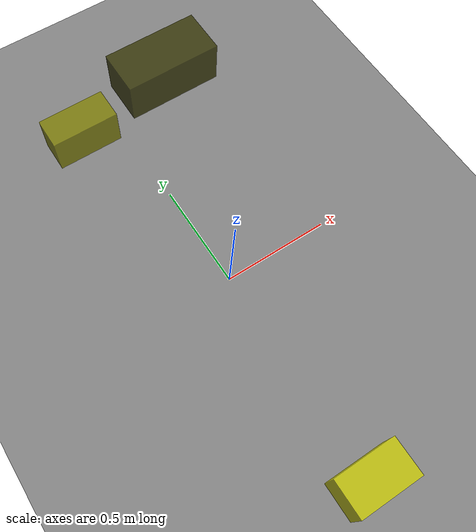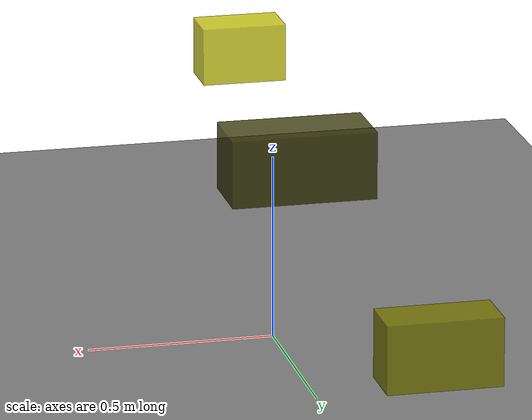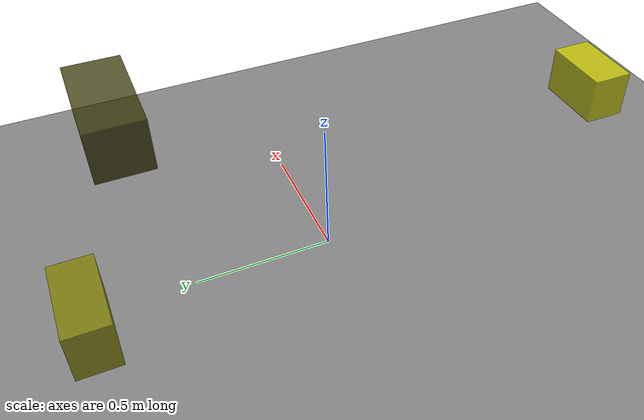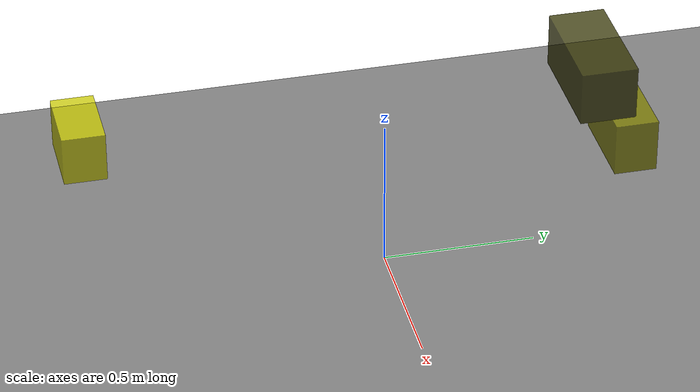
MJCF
<?xml version="1.0"?>
<mujoco model="obstacle_scene">
  <compiler angle="radian" coordinate="local"/>
  <option timestep="0.001" gravity="0 0 -9.81"/>

  <asset>
    <material name="obstacle_mat" rgba="0.8 0.8 0.0 0.8"/>
    <material name="ground_mat" rgba="0.5 0.5 0.5 1"/>
  </asset>

  <worldbody>
    <!-- Ground plane -->
    <geom name="ground" type="plane" size="3 3 0.1" material="ground_mat"/>

    <!-- Obstacles -->
    <body name="obstacle_0" pos="0.088315 0.646553 0.694587">
      <geom name="obs_0" type="box" size="0.185004 0.089246 0.086960" rgba="0.2 0.2 0.0 0.8"/>
    </body>
    <body name="obstacle_1" pos="-0.225196 0.866149 0.248236">
      <geom name="obs_1" type="box" size="0.150660 0.071185 0.091127" rgba="0.5 0.5 0.0 0.8"/>
    </body>
    <body name="obstacle_2" pos="-0.126470 -0.953794 0.522167">
      <geom name="obs_2" type="box" size="0.117918 0.068371 0.080858" rgba="0.8 0.8 0.0 0.8"/>
    </body>
  </worldbody>
</mujoco>
